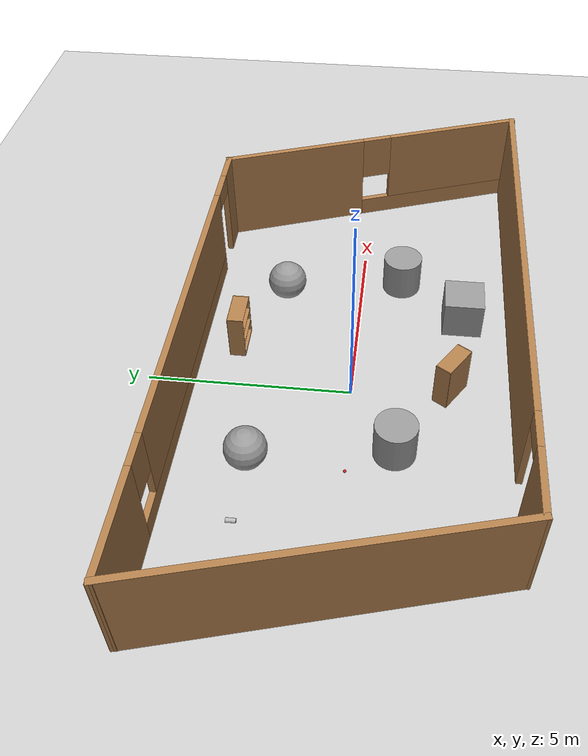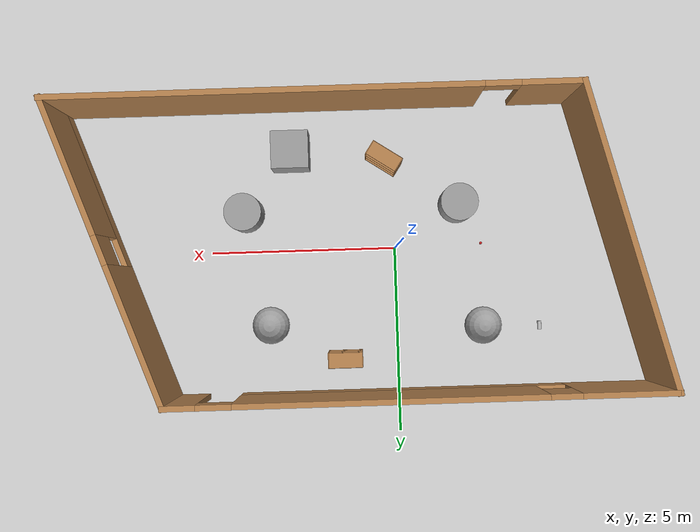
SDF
<sdf version="1.7">
 <world name="default">
  <light name="sun" type="directional">
   <pose>0 0 10 0 -0 0</pose>
   <diffuse>0.8 0.8 0.8 1</diffuse>
   <specular>0.2 0.2 0.2 1</specular>
   <attenuation>
    <range>1000</range>
    <constant>0.9</constant>
    <linear>0.01</linear>
    <quadratic>0.001</quadratic>
   </attenuation>
   <direction>-0.5 0.1 -0.9</direction>
   <spot><inner_angle>0</inner_angle><outer_angle>0</outer_angle><falloff>0</falloff></spot>
  </light>
  <model name="ground_plane">
   <static>1</static>
   <link name="link">
    <collision name="collision">
     <geometry><plane><normal>0 0 1</normal><size>100 100</size></plane></geometry>
     <surface>
      <contact><collide_bitmask>65535</collide_bitmask></contact>
      <friction><ode><mu>100</mu><mu2>50</mu2></ode></friction>
     </surface>
    </collision>
    <visual name="visual">
     <cast_shadows>0</cast_shadows>
     <geometry><plane><normal>0 0 1</normal><size>100 100</size></plane></geometry>
     <material>
      <script><uri>file://media/materials/scripts/gazebo.material</uri><name>Gazebo/Grey</name></script>
     </material>
    </visual>
   </link>
  </model>
  <gravity>0 0 -9.8</gravity>
  <magnetic_field>6e-06 2.3e-05 -4.2e-05</magnetic_field>
  <atmosphere type="adiabatic"/>
  <physics type="ode">
   <max_step_size>0.001</max_step_size>
   <real_time_factor>1</real_time_factor>
   <real_time_update_rate>1000</real_time_update_rate>
  </physics>
  <scene><ambient>0.4 0.4 0.4 1</ambient><background>0.7 0.7 0.7 1</background><shadows>1</shadows></scene>
  <audio><device>default</device></audio>
  <spherical_coordinates>
   <surface_model>EARTH_WGS84</surface_model>
   <latitude_deg>0</latitude_deg>
   <longitude_deg>0</longitude_deg>
   <elevation>0</elevation>
   <heading_deg>0</heading_deg>
  </spherical_coordinates>
  <model name="irocu_test_world">
   <pose>0.990613 -3.2e-05 0 0 -0 0</pose>
   <link name="Wall_1">
    <pose>1.04608 -3.912 0 0 -0 0</pose>
    <visual name="Wall_1_Visual_0">
     <pose>-6.04475 0 1.25 0 -0 0</pose>
     <geometry><box><size>1.66049 0.15 2.5</size></box></geometry>
     <material>
      <script><uri>file://media/materials/scripts/gazebo.material</uri><name>Gazebo/Wood</name></script>
      <ambient>1 1 1 1</ambient>
     </material>
     <meta><layer>0</layer></meta>
    </visual>
    <collision name="Wall_1_Collision_0">
     <geometry><box><size>1.66049 0.15 2.5</size></box></geometry>
     <pose>-6.04475 0 1.25 0 -0 0</pose>
    </collision>
    <visual name="Wall_1_Visual_1">
     <pose>1.28025 0 1.25 0 -0 0</pose>
     <geometry><box><size>11.1895 0.15 2.5</size></box></geometry>
     <material>
      <script><uri>file://media/materials/scripts/gazebo.material</uri><name>Gazebo/Wood</name></script>
      <ambient>1 1 1 1</ambient>
     </material>
     <meta><layer>0</layer></meta>
    </visual>
    <collision name="Wall_1_Collision_1">
     <geometry><box><size>11.1895 0.15 2.5</size></box></geometry>
     <pose>1.28025 0 1.25 0 -0 0</pose>
    </collision>
    <visual name="Wall_1_Visual_2">
     <pose>-4.76451 0 2.25 0 -0 0</pose>
     <geometry><box><size>0.9 0.15 0.5</size></box></geometry>
     <material>
      <script><uri>file://media/materials/scripts/gazebo.material</uri><name>Gazebo/Wood</name></script>
      <ambient>1 1 1 1</ambient>
     </material>
     <meta><layer>0</layer></meta>
    </visual>
    <collision name="Wall_1_Collision_2">
     <geometry><box><size>0.9 0.15 0.5</size></box></geometry>
     <pose>-4.76451 0 2.25 0 -0 0</pose>
    </collision>
   </link>
   <link name="Wall_3">
    <collision name="Wall_3_Collision">
     <geometry><box><size>8.25 0.15 2.5</size></box></geometry>
     <pose>0 0 1.25 0 -0 0</pose>
    </collision>
    <visual name="Wall_3_Visual">
     <pose>0 0 1.25 0 -0 0</pose>
     <geometry><box><size>8.25 0.15 2.5</size></box></geometry>
     <material>
      <script><uri>file://media/materials/scripts/gazebo.material</uri><name>Gazebo/Wood</name></script>
      <ambient>1 1 1 1</ambient>
     </material>
     <meta><layer>0</layer></meta>
    </visual>
    <pose>-6.80213 0 0 0 -0 1.8326</pose>
   </link>
   <link name="Wall_4">
    <pose>-1.42535 3.912 0 0 -0 0</pose>
    <visual name="Wall_4_Visual_0">
     <pose>-5.25576 0 1.25 0 -0 0</pose>
     <geometry><box><size>2.48848 0.15 2.5</size></box></geometry>
     <material>
      <script><uri>file://media/materials/scripts/gazebo.material</uri><name>Gazebo/Wood</name></script>
      <ambient>1 1 1 1</ambient>
     </material>
     <meta><layer>0</layer></meta>
    </visual>
    <collision name="Wall_4_Collision_0">
     <geometry><box><size>2.48848 0.15 2.5</size></box></geometry>
     <pose>-5.25576 0 1.25 0 -0 0</pose>
    </collision>
    <visual name="Wall_4_Visual_1">
     <pose>6.05249 0 1.25 0 -0 0</pose>
     <geometry><box><size>0.895017 0.15 2.5</size></box></geometry>
     <material>
      <script><uri>file://media/materials/scripts/gazebo.material</uri><name>Gazebo/Wood</name></script>
      <ambient>1 1 1 1</ambient>
     </material>
     <meta><layer>0</layer></meta>
    </visual>
    <collision name="Wall_4_Collision_1">
     <geometry><box><size>0.895017 0.15 2.5</size></box></geometry>
     <pose>6.05249 0 1.25 0 -0 0</pose>
    </collision>
    <visual name="Wall_4_Visual_2">
     <pose>0.346733 0 0.25 0 -0 0</pose>
     <geometry><box><size>8.7165 0.15 0.5</size></box></geometry>
     <material>
      <script><uri>file://media/materials/scripts/gazebo.material</uri><name>Gazebo/Wood</name></script>
      <ambient>1 1 1 1</ambient>
     </material>
     <meta><layer>0</layer></meta>
    </visual>
    <collision name="Wall_4_Collision_2">
     <geometry><box><size>8.7165 0.15 0.5</size></box></geometry>
     <pose>0.346733 0 0.25 0 -0 0</pose>
    </collision>
    <visual name="Wall_4_Visual_3">
     <pose>0.746733 0 1.5 0 -0 0</pose>
     <geometry><box><size>7.9165 0.15 2</size></box></geometry>
     <material>
      <script><uri>file://media/materials/scripts/gazebo.material</uri><name>Gazebo/Wood</name></script>
      <ambient>1 1 1 1</ambient>
     </material>
     <meta><layer>0</layer></meta>
    </visual>
    <collision name="Wall_4_Collision_3">
     <geometry><box><size>7.9165 0.15 2</size></box></geometry>
     <pose>0.746733 0 1.5 0 -0 0</pose>
    </collision>
    <visual name="Wall_4_Visual_4">
     <pose>-3.61152 0 1.9 0 -0 0</pose>
     <geometry><box><size>0.8 0.15 1.2</size></box></geometry>
     <material>
      <script><uri>file://media/materials/scripts/gazebo.material</uri><name>Gazebo/Wood</name></script>
      <ambient>1 1 1 1</ambient>
     </material>
     <meta><layer>0</layer></meta>
    </visual>
    <collision name="Wall_4_Collision_4">
     <geometry><box><size>0.8 0.15 1.2</size></box></geometry>
     <pose>-3.61152 0 1.9 0 -0 0</pose>
    </collision>
    <visual name="Wall_4_Visual_5">
     <pose>5.15498 0 2.25 0 -0 0</pose>
     <geometry><box><size>0.9 0.15 0.5</size></box></geometry>
     <material>
      <script><uri>file://media/materials/scripts/gazebo.material</uri><name>Gazebo/Wood</name></script>
      <ambient>1 1 1 1</ambient>
     </material>
     <meta><layer>0</layer></meta>
    </visual>
    <collision name="Wall_4_Collision_5">
     <geometry><box><size>0.9 0.15 0.5</size></box></geometry>
     <pose>5.15498 0 2.25 0 -0 0</pose>
    </collision>
   </link>
   <link name="Wall_5">
    <pose>6.42287 0 0 0 -0 -1.22187</pose>
    <visual name="Wall_5_Visual_0">
     <pose>-2.28271 0 1.25 0 -0 0</pose>
     <geometry><box><size>3.91027 0.15 2.5</size></box></geometry>
     <material>
      <script><uri>file://media/materials/scripts/gazebo.material</uri><name>Gazebo/Wood</name></script>
      <ambient>1 1 1 1</ambient>
     </material>
     <meta><layer>0</layer></meta>
    </visual>
    <collision name="Wall_5_Collision_0">
     <geometry><box><size>3.91027 0.15 2.5</size></box></geometry>
     <pose>-2.28271 0 1.25 0 -0 0</pose>
    </collision>
    <visual name="Wall_5_Visual_1">
     <pose>1.95513 0 0.25 0 -0 0</pose>
     <geometry><box><size>4.56543 0.15 0.5</size></box></geometry>
     <material>
      <script><uri>file://media/materials/scripts/gazebo.material</uri><name>Gazebo/Wood</name></script>
      <ambient>1 1 1 1</ambient>
     </material>
     <meta><layer>0</layer></meta>
    </visual>
    <collision name="Wall_5_Collision_1">
     <geometry><box><size>4.56543 0.15 0.5</size></box></geometry>
     <pose>1.95513 0 0.25 0 -0 0</pose>
    </collision>
    <visual name="Wall_5_Visual_2">
     <pose>2.35513 0 1.5 0 -0 0</pose>
     <geometry><box><size>3.76543 0.15 2</size></box></geometry>
     <material>
      <script><uri>file://media/materials/scripts/gazebo.material</uri><name>Gazebo/Wood</name></script>
      <ambient>1 1 1 1</ambient>
     </material>
     <meta><layer>0</layer></meta>
    </visual>
    <collision name="Wall_5_Collision_2">
     <geometry><box><size>3.76543 0.15 2</size></box></geometry>
     <pose>2.35513 0 1.5 0 -0 0</pose>
    </collision>
    <visual name="Wall_5_Visual_3">
     <pose>0.072422 0 1.9 0 -0 0</pose>
     <geometry><box><size>0.8 0.15 1.2</size></box></geometry>
     <material>
      <script><uri>file://media/materials/scripts/gazebo.material</uri><name>Gazebo/Wood</name></script>
      <ambient>1 1 1 1</ambient>
     </material>
     <meta><layer>0</layer></meta>
    </visual>
    <collision name="Wall_5_Collision_3">
     <geometry><box><size>0.8 0.15 1.2</size></box></geometry>
     <pose>0.072422 0 1.9 0 -0 0</pose>
    </collision>
   </link>
   <static>1</static>
  </model>
  <model name="bookshelf">
   <static>1</static>
   <link name="link">
    <inertial><mass>1</mass></inertial>
    <collision name="back">
     <pose>0 0.005 0.6 0 -0 0</pose>
     <geometry><box><size>0.9 0.01 1.2</size></box></geometry>
    </collision>
    <visual name="visual1">
     <pose>0 0.005 0.6 0 -0 0</pose>
     <geometry><box><size>0.9 0.01 1.2</size></box></geometry>
     <material>
      <script><uri>file://media/materials/scripts/gazebo.material</uri><name>Gazebo/Wood</name></script>
     </material>
    </visual>
    <collision name="left_side">
     <pose>0.45 -0.195 0.6 0 -0 0</pose>
     <geometry><box><size>0.02 0.4 1.2</size></box></geometry>
    </collision>
    <visual name="visual2">
     <pose>0.45 -0.195 0.6 0 -0 0</pose>
     <geometry><box><size>0.02 0.4 1.2</size></box></geometry>
     <material>
      <script><uri>file://media/materials/scripts/gazebo.material</uri><name>Gazebo/Wood</name></script>
     </material>
    </visual>
    <collision name="right_side">
     <pose>-0.45 -0.195 0.6 0 -0 0</pose>
     <geometry><box><size>0.02 0.4 1.2</size></box></geometry>
    </collision>
    <visual name="visual3">
     <pose>-0.45 -0.195 0.6 0 -0 0</pose>
     <geometry><box><size>0.02 0.4 1.2</size></box></geometry>
     <material>
      <script><uri>file://media/materials/scripts/gazebo.material</uri><name>Gazebo/Wood</name></script>
     </material>
    </visual>
    <collision name="bottom">
     <pose>0 -0.195 0.03 0 -0 0</pose>
     <geometry><box><size>0.88 0.4 0.06</size></box></geometry>
    </collision>
    <visual name="visual4">
     <pose>0 -0.195 0.03 0 -0 0</pose>
     <geometry><box><size>0.88 0.4 0.06</size></box></geometry>
     <material>
      <script><uri>file://media/materials/scripts/gazebo.material</uri><name>Gazebo/Wood</name></script>
     </material>
    </visual>
    <collision name="top">
     <pose>0 -0.195 1.19 0 -0 0</pose>
     <geometry><box><size>0.88 0.4 0.02</size></box></geometry>
    </collision>
    <visual name="visual5">
     <pose>0 -0.195 1.19 0 -0 0</pose>
     <geometry><box><size>0.88 0.4 0.02</size></box></geometry>
     <material>
      <script><uri>file://media/materials/scripts/gazebo.material</uri><name>Gazebo/Wood</name></script>
     </material>
    </visual>
    <collision name="low_shelf">
     <pose>0 -0.195 0.43 0 -0 0</pose>
     <geometry><box><size>0.88 0.4 0.02</size></box></geometry>
    </collision>
    <visual name="visual6">
     <pose>0 -0.195 0.43 0 -0 0</pose>
     <geometry><box><size>0.88 0.4 0.02</size></box></geometry>
     <material>
      <script><uri>file://media/materials/scripts/gazebo.material</uri><name>Gazebo/Wood</name></script>
     </material>
    </visual>
    <collision name="high_shelf">
     <pose>0 -0.195 0.8 0 -0 0</pose>
     <geometry><box><size>0.88 0.4 0.02</size></box></geometry>
    </collision>
    <visual name="visual7">
     <pose>0 -0.195 0.8 0 -0 0</pose>
     <geometry><box><size>0.88 0.4 0.02</size></box></geometry>
     <material>
      <script><uri>file://media/materials/scripts/gazebo.material</uri><name>Gazebo/Wood</name></script>
     </material>
    </visual>
   </link>
   <pose>1.42691 3.14224 0 0 -0 0</pose>
  </model>
  <model name="bookshelf_0">
   <static>1</static>
   <link name="link">
    <inertial><mass>1</mass></inertial>
    <collision name="back">
     <pose>0 0.005 0.6 0 -0 0</pose>
     <geometry><box><size>0.9 0.01 1.2</size></box></geometry>
    </collision>
    <visual name="visual1">
     <pose>0 0.005 0.6 0 -0 0</pose>
     <geometry><box><size>0.9 0.01 1.2</size></box></geometry>
     <material>
      <script><uri>file://media/materials/scripts/gazebo.material</uri><name>Gazebo/Wood</name></script>
     </material>
    </visual>
    <collision name="left_side">
     <pose>0.45 -0.195 0.6 0 -0 0</pose>
     <geometry><box><size>0.02 0.4 1.2</size></box></geometry>
    </collision>
    <visual name="visual2">
     <pose>0.45 -0.195 0.6 0 -0 0</pose>
     <geometry><box><size>0.02 0.4 1.2</size></box></geometry>
     <material>
      <script><uri>file://media/materials/scripts/gazebo.material</uri><name>Gazebo/Wood</name></script>
     </material>
    </visual>
    <collision name="right_side">
     <pose>-0.45 -0.195 0.6 0 -0 0</pose>
     <geometry><box><size>0.02 0.4 1.2</size></box></geometry>
    </collision>
    <visual name="visual3">
     <pose>-0.45 -0.195 0.6 0 -0 0</pose>
     <geometry><box><size>0.02 0.4 1.2</size></box></geometry>
     <material>
      <script><uri>file://media/materials/scripts/gazebo.material</uri><name>Gazebo/Wood</name></script>
     </material>
    </visual>
    <collision name="bottom">
     <pose>0 -0.195 0.03 0 -0 0</pose>
     <geometry><box><size>0.88 0.4 0.06</size></box></geometry>
    </collision>
    <visual name="visual4">
     <pose>0 -0.195 0.03 0 -0 0</pose>
     <geometry><box><size>0.88 0.4 0.06</size></box></geometry>
     <material>
      <script><uri>file://media/materials/scripts/gazebo.material</uri><name>Gazebo/Wood</name></script>
     </material>
    </visual>
    <collision name="top">
     <pose>0 -0.195 1.19 0 -0 0</pose>
     <geometry><box><size>0.88 0.4 0.02</size></box></geometry>
    </collision>
    <visual name="visual5">
     <pose>0 -0.195 1.19 0 -0 0</pose>
     <geometry><box><size>0.88 0.4 0.02</size></box></geometry>
     <material>
      <script><uri>file://media/materials/scripts/gazebo.material</uri><name>Gazebo/Wood</name></script>
     </material>
    </visual>
    <collision name="low_shelf">
     <pose>0 -0.195 0.43 0 -0 0</pose>
     <geometry><box><size>0.88 0.4 0.02</size></box></geometry>
    </collision>
    <visual name="visual6">
     <pose>0 -0.195 0.43 0 -0 0</pose>
     <geometry><box><size>0.88 0.4 0.02</size></box></geometry>
     <material>
      <script><uri>file://media/materials/scripts/gazebo.material</uri><name>Gazebo/Wood</name></script>
     </material>
    </visual>
    <collision name="high_shelf">
     <pose>0 -0.195 0.8 0 -0 0</pose>
     <geometry><box><size>0.88 0.4 0.02</size></box></geometry>
    </collision>
    <visual name="visual7">
     <pose>0 -0.195 0.8 0 -0 0</pose>
     <geometry><box><size>0.88 0.4 0.02</size></box></geometry>
     <material>
      <script><uri>file://media/materials/scripts/gazebo.material</uri><name>Gazebo/Wood</name></script>
     </material>
    </visual>
   </link>
   <pose>0.144127 -2.54082 0 0 -0 2.55972</pose>
  </model>
  <model name="cricket_ball">
   <link name="link">
    <pose>0 0 0.0375 0 -0 0</pose>
    <inertial>
     <mass>0.1467</mass>
     <inertia>
      <ixx>8.25187e-05</ixx>
      <ixy>0</ixy>
      <ixz>0</ixz>
      <iyy>8.25187e-05</iyy>
      <iyz>0</iyz>
      <izz>8.25187e-05</izz>
     </inertia>
    </inertial>
    <collision name="collision">
     <geometry><sphere><radius>0.0375</radius></sphere></geometry>
     <surface>
      <contact>
       <poissons_ratio>0.347</poissons_ratio>
       <elastic_modulus>8.8e+09</elastic_modulus>
       <ode><kp>100000</kp><kd>100</kd><max_vel>100</max_vel><min_depth>0.001</min_depth></ode>
      </contact>
      <friction>
       <torsional>
        <coefficient>1</coefficient>
        <use_patch_radius>0</use_patch_radius>
        <surface_radius>0.01</surface_radius>
       </torsional>
      </friction>
     </surface>
    </collision>
    <visual name="visual">
     <geometry><sphere><radius>0.0375</radius></sphere></geometry>
     <material>
      <script><uri>file://media/materials/scripts/gazebo.material</uri><name>Gazebo/Red</name></script>
     </material>
    </visual>
    <velocity_decay><linear>0</linear><angular>0.005</angular></velocity_decay>
   </link>
   <pose>-2.35916 -0.064894 -0.001014 0 -0 0</pose>
  </model>
  <model name="beer">
   <link name="link">
    <pose>0 0 0.115 0 -0 0</pose>
    <inertial>
     <mass>0.39</mass>
     <inertia><ixx>0.00058</ixx><ixy>0</ixy><ixz>0</ixz><iyy>0.00058</iyy><iyz>0</iyz><izz>0.00019</izz></inertia>
    </inertial>
    <collision name="collision">
     <geometry><cylinder><radius>0.055</radius><length>0.23</length></cylinder></geometry>
    </collision>
    <visual name="visual">
     <geometry><cylinder><radius>0.055</radius><length>0.23</length></cylinder></geometry>
     <material>
      <script>
       <uri>model://beer/materials/scripts</uri>
       <uri>model://beer/materials/textures</uri>
       <name>Beer/Diffuse</name>
      </script>
     </material>
    </visual>
   </link>
   <pose>-3.8897 2.11671 0.054918 -1.56978 1.21289 0.000949</pose>
  </model>
  <model name="unit_sphere">
   <pose>-2.29188 2.1653 0.5 0 -0 0</pose>
   <link name="link">
    <inertial>
     <mass>1</mass>
     <inertia><ixx>0.1</ixx><ixy>0</ixy><ixz>0</ixz><iyy>0.1</iyy><iyz>0</iyz><izz>0.1</izz></inertia>
    </inertial>
    <collision name="collision"><geometry><sphere><radius>0.5</radius></sphere></geometry></collision>
    <visual name="visual">
     <geometry><sphere><radius>0.5</radius></sphere></geometry>
     <material>
      <script><name>Gazebo/Grey</name><uri>file://media/materials/scripts/gazebo.material</uri></script>
     </material>
    </visual>
   </link>
  </model>
  <model name="unit_cylinder">
   <pose>-1.7161 -1.13753 0.499993 -3e-06 -3e-06 0</pose>
   <link name="link">
    <inertial>
     <mass>1</mass>
     <inertia><ixx>0.145833</ixx><ixy>0</ixy><ixz>0</ixz><iyy>0.145833</iyy><iyz>0</iyz><izz>0.125</izz></inertia>
    </inertial>
    <collision name="collision">
     <geometry><cylinder><radius>0.5</radius><length>1</length></cylinder></geometry>
    </collision>
    <visual name="visual">
     <geometry><cylinder><radius>0.5</radius><length>1</length></cylinder></geometry>
     <material>
      <script><name>Gazebo/Grey</name><uri>file://media/materials/scripts/gazebo.material</uri></script>
     </material>
    </visual>
   </link>
  </model>
  <model name="unit_box">
   <pose>2.74865 -2.66821 0.499995 0 1e-05 0</pose>
   <link name="link">
    <inertial>
     <mass>1</mass>
     <inertia>
      <ixx>0.166667</ixx>
      <ixy>0</ixy>
      <ixz>0</ixz>
      <iyy>0.166667</iyy>
      <iyz>0</iyz>
      <izz>0.166667</izz>
     </inertia>
    </inertial>
    <collision name="collision"><geometry><box><size>1 1 1</size></box></geometry></collision>
    <visual name="visual">
     <geometry><box><size>1 1 1</size></box></geometry>
     <material>
      <script><name>Gazebo/Grey</name><uri>file://media/materials/scripts/gazebo.material</uri></script>
     </material>
    </visual>
   </link>
  </model>
  <model name="unit_sphere_0">
   <pose>3.40908 1.99879 0.5 0 -0 0</pose>
   <link name="link">
    <inertial>
     <mass>1</mass>
     <inertia><ixx>0.1</ixx><ixy>0</ixy><ixz>0</ixz><iyy>0.1</iyy><iyz>0</iyz><izz>0.1</izz></inertia>
    </inertial>
    <collision name="collision"><geometry><sphere><radius>0.5</radius></sphere></geometry></collision>
    <visual name="visual">
     <geometry><sphere><radius>0.5</radius></sphere></geometry>
     <material>
      <script><name>Gazebo/Grey</name><uri>file://media/materials/scripts/gazebo.material</uri></script>
     </material>
    </visual>
   </link>
  </model>
  <model name="unit_cylinder_0">
   <pose>4.04 -1.04491 0.499997 3e-06 4e-06 -0</pose>
   <link name="link">
    <inertial>
     <mass>1</mass>
     <inertia><ixx>0.145833</ixx><ixy>0</ixy><ixz>0</ixz><iyy>0.145833</iyy><iyz>0</iyz><izz>0.125</izz></inertia>
    </inertial>
    <collision name="collision">
     <geometry><cylinder><radius>0.5</radius><length>1</length></cylinder></geometry>
    </collision>
    <visual name="visual">
     <geometry><cylinder><radius>0.5</radius><length>1</length></cylinder></geometry>
     <material>
      <script><name>Gazebo/Grey</name><uri>file://media/materials/scripts/gazebo.material</uri></script>
     </material>
    </visual>
   </link>
  </model>
 </world>
</sdf>
